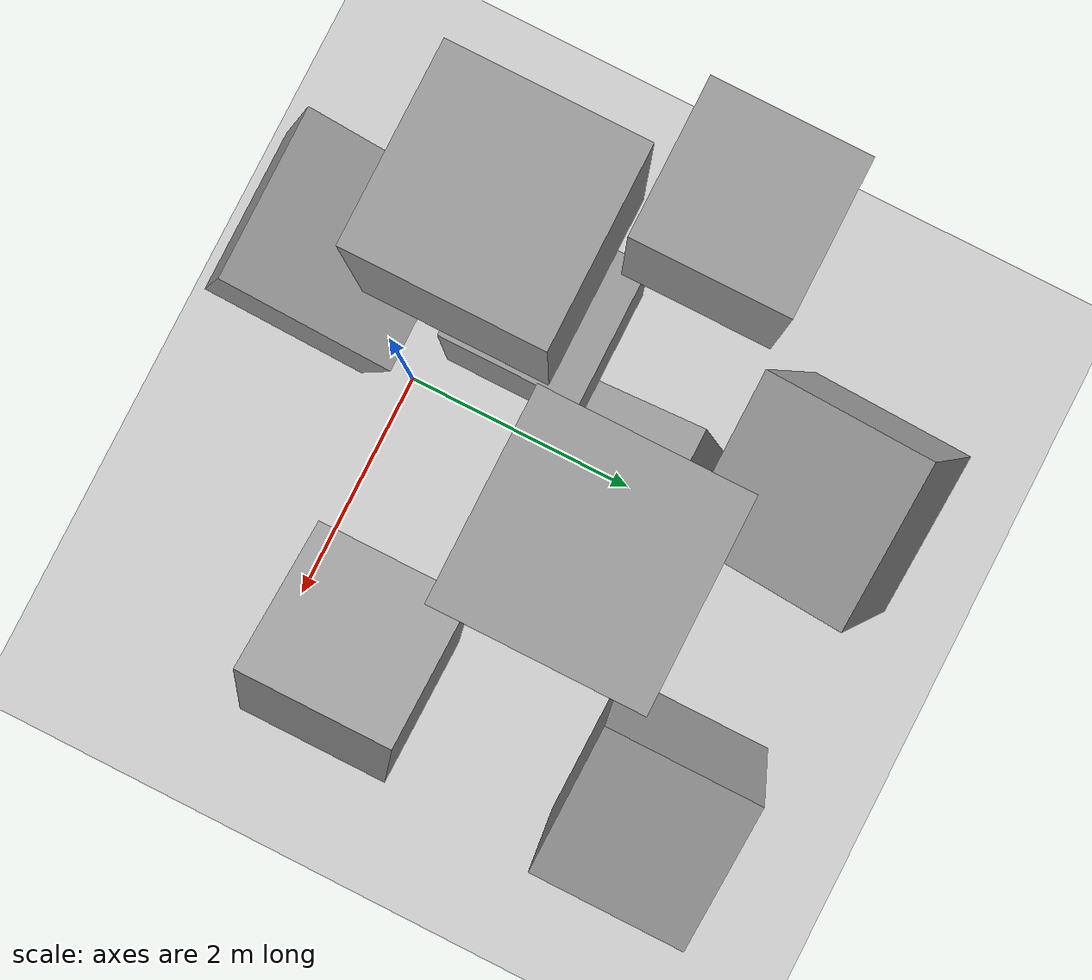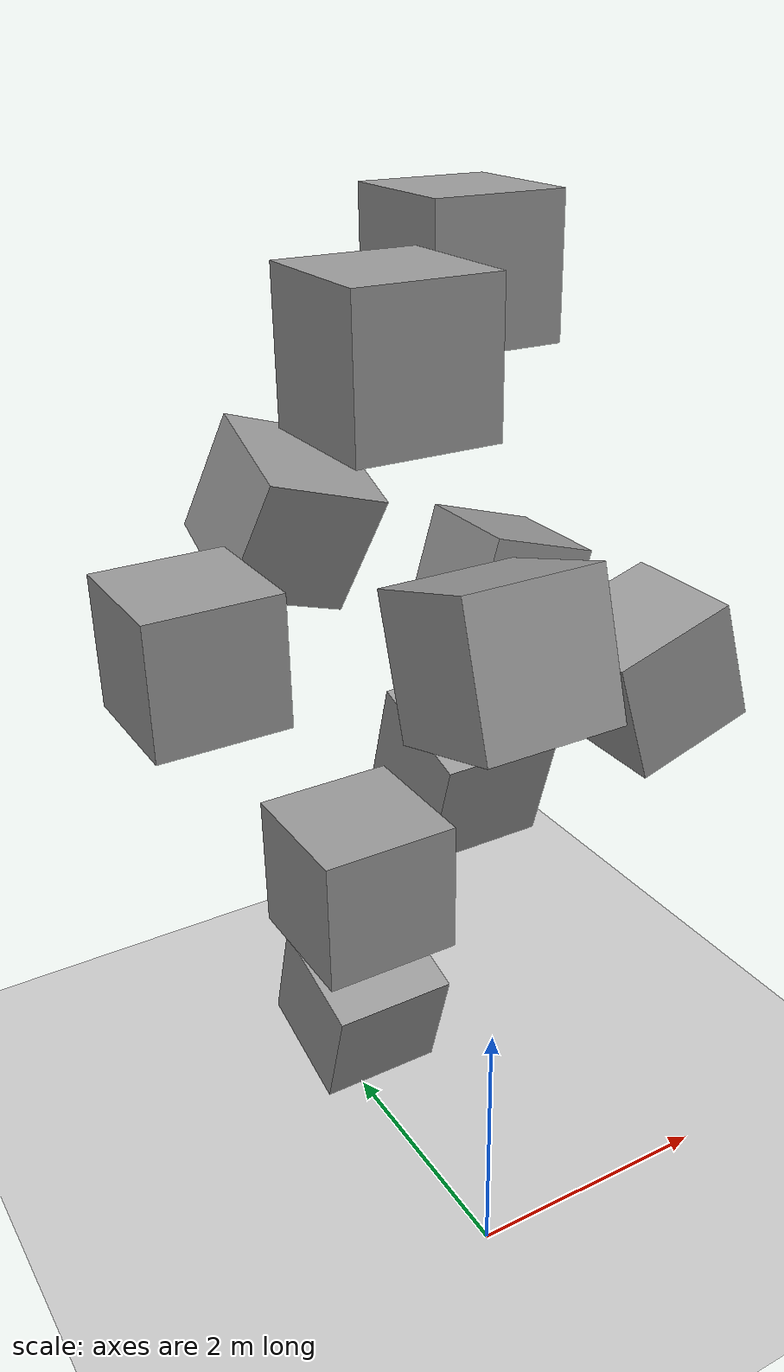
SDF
<sdf version="1.5">
 <world name="default">
  <light name="sun" type="directional">
   <pose>0 0 10 0 -0 0</pose>
   <diffuse>0.8 0.8 0.8 1</diffuse>
   <specular>0.2 0.2 0.2 1</specular>
   <attenuation>
    <range>1000</range>
    <constant>0.9</constant>
    <linear>0.01</linear>
    <quadratic>0.001</quadratic>
   </attenuation>
   <direction>-0.5 0.1 -0.9</direction>
  </light>
  <model name="ground_plane">
   <static>1</static>
   <link name="link">
    <collision name="collision">
     <geometry><plane><normal>0 0 1</normal><size>100 100</size></plane></geometry>
     <surface><friction><ode><mu>100</mu><mu2>50</mu2></ode></friction></surface>
    </collision>
    <visual name="visual">
     <cast_shadows>0</cast_shadows>
     <geometry><plane><normal>0 0 1</normal><size>100 100</size></plane></geometry>
     <material>
      <script><uri>file://media/materials/scripts/gazebo.material</uri><name>Gazebo/Grey</name></script>
     </material>
    </visual>
   </link>
  </model>
  <physics name="default_physics" default="0" type="ode">
   <max_step_size>0.001</max_step_size>
   <real_time_factor>1</real_time_factor>
   <real_time_update_rate>1000</real_time_update_rate>
   <gravity>0 0 -9.8</gravity>
   <magnetic_field>6e-06 2.3e-05 -4.2e-05</magnetic_field>
   <roki>
    <contact_info>
     <compensation>500</compensation>
     <relaxation>1</relaxation>
     <static_friction>1.0</static_friction>
     <friction>1.0</friction>
    </contact_info>
    <solver_type>Volume</solver_type>
    <debug_print>true</debug_print>
   </roki>
  </physics>
  <scene><ambient>0.4 0.4 0.4 1</ambient><background>0.7 0.7 0.7 1</background><shadows>1</shadows></scene>
  <audio><device>default</device></audio>
  <spherical_coordinates>
   <surface_model>EARTH_WGS84</surface_model>
   <latitude_deg>0</latitude_deg>
   <longitude_deg>0</longitude_deg>
   <elevation>0</elevation>
   <heading_deg>0</heading_deg>
  </spherical_coordinates>
  <model name="unit_box_1">
   <pose>1 2 3 0.3 -0 0</pose>
   <link name="link">
    <inertial>
     <mass>1</mass>
     <inertia>
      <ixx>0.166667</ixx>
      <ixy>0</ixy>
      <ixz>0</ixz>
      <iyy>0.166667</iyy>
      <iyz>0</iyz>
      <izz>0.166667</izz>
     </inertia>
    </inertial>
    <collision name="collision"><geometry><box><size>1 1 1</size></box></geometry></collision>
    <visual name="visual">
     <geometry><box><size>1 1 1</size></box></geometry>
     <material>
      <script><name>Gazebo/Grey</name><uri>file://media/materials/scripts/gazebo.material</uri></script>
     </material>
    </visual>
   </link>
  </model>
  <model name="unit_box_2">
   <pose>2 3 4 0 0.3 0</pose>
   <link name="link">
    <inertial>
     <mass>1</mass>
     <inertia>
      <ixx>0.166667</ixx>
      <ixy>0</ixy>
      <ixz>0</ixz>
      <iyy>0.166667</iyy>
      <iyz>0</iyz>
      <izz>0.166667</izz>
     </inertia>
    </inertial>
    <collision name="collision"><geometry><box><size>1 1 1</size></box></geometry></collision>
    <visual name="visual">
     <geometry><box><size>1 1 1</size></box></geometry>
     <material>
      <script><name>Gazebo/Grey</name><uri>file://media/materials/scripts/gazebo.material</uri></script>
     </material>
    </visual>
   </link>
  </model>
  <model name="unit_box_3">
   <pose>2 1 4 0 -0.3 0</pose>
   <link name="link">
    <inertial>
     <mass>1</mass>
     <inertia>
      <ixx>0.166667</ixx>
      <ixy>0</ixy>
      <ixz>0</ixz>
      <iyy>0.166667</iyy>
      <iyz>0</iyz>
      <izz>0.166667</izz>
     </inertia>
    </inertial>
    <collision name="collision"><geometry><box><size>1 1 1</size></box></geometry></collision>
    <visual name="visual">
     <geometry><box><size>1 1 1</size></box></geometry>
     <material>
      <script><name>Gazebo/Grey</name><uri>file://media/materials/scripts/gazebo.material</uri></script>
     </material>
    </visual>
   </link>
  </model>
  <model name="unit_box_4">
   <pose>0 0 5 -0.3 0 0</pose>
   <link name="link">
    <inertial>
     <mass>1</mass>
     <inertia>
      <ixx>0.166667</ixx>
      <ixy>0</ixy>
      <ixz>0</ixz>
      <iyy>0.166667</iyy>
      <iyz>0</iyz>
      <izz>0.166667</izz>
     </inertia>
    </inertial>
    <collision name="collision"><geometry><box><size>1 1 1</size></box></geometry></collision>
    <visual name="visual">
     <geometry><box><size>1 1 1</size></box></geometry>
     <material>
      <script><name>Gazebo/Grey</name><uri>file://media/materials/scripts/gazebo.material</uri></script>
     </material>
    </visual>
   </link>
  </model>
  <model name="unit_box_5">
   <pose>0 3 5 0.3 0.3 0</pose>
   <link name="link">
    <inertial>
     <mass>1</mass>
     <inertia>
      <ixx>0.166667</ixx>
      <ixy>0</ixy>
      <ixz>0</ixz>
      <iyy>0.166667</iyy>
      <iyz>0</iyz>
      <izz>0.166667</izz>
     </inertia>
    </inertial>
    <collision name="collision"><geometry><box><size>1 1 1</size></box></geometry></collision>
    <visual name="visual">
     <geometry><box><size>1 1 1</size></box></geometry>
     <material>
      <script><name>Gazebo/Grey</name><uri>file://media/materials/scripts/gazebo.material</uri></script>
     </material>
    </visual>
   </link>
  </model>
  <model name="unit_box_6">
   <pose>-0.5 1 3 0 -0 0</pose>
   <link name="link">
    <inertial>
     <mass>1</mass>
     <inertia>
      <ixx>0.166667</ixx>
      <ixy>0</ixy>
      <ixz>0</ixz>
      <iyy>0.166667</iyy>
      <iyz>0</iyz>
      <izz>0.166667</izz>
     </inertia>
    </inertial>
    <collision name="collision"><geometry><box><size>1 1 1</size></box></geometry></collision>
    <visual name="visual">
     <geometry><box><size>1 1 1</size></box></geometry>
     <material>
      <script><name>Gazebo/Grey</name><uri>file://media/materials/scripts/gazebo.material</uri></script>
     </material>
    </visual>
   </link>
  </model>
  <model name="unit_box_7">
   <pose>0.955848 2 6.91387 0 -0 0</pose>
   <link name="link">
    <inertial>
     <mass>1</mass>
     <inertia>
      <ixx>0.166667</ixx>
      <ixy>0</ixy>
      <ixz>0</ixz>
      <iyy>0.166667</iyy>
      <iyz>0</iyz>
      <izz>0.166667</izz>
     </inertia>
    </inertial>
    <collision name="collision"><geometry><box><size>1 1 1</size></box></geometry></collision>
    <visual name="visual">
     <geometry><box><size>1 1 1</size></box></geometry>
     <material>
      <script><name>Gazebo/Grey</name><uri>file://media/materials/scripts/gazebo.material</uri></script>
     </material>
    </visual>
   </link>
  </model>
  <model name="unit_box_8">
   <pose>-1.25813 1.89722 4.58169 0 -0 0</pose>
   <link name="link">
    <inertial>
     <mass>1</mass>
     <inertia>
      <ixx>0.166667</ixx>
      <ixy>0</ixy>
      <ixz>0</ixz>
      <iyy>0.166667</iyy>
      <iyz>0</iyz>
      <izz>0.166667</izz>
     </inertia>
    </inertial>
    <collision name="collision"><geometry><box><size>1 1 1</size></box></geometry></collision>
    <visual name="visual">
     <geometry><box><size>1 1 1</size></box></geometry>
     <material>
      <script><name>Gazebo/Grey</name><uri>file://media/materials/scripts/gazebo.material</uri></script>
     </material>
    </visual>
   </link>
  </model>
  <model name="unit_box_9">
   <pose>-0.210142 0.957861 6.65831 0 -0 0</pose>
   <link name="link">
    <inertial>
     <mass>1</mass>
     <inertia>
      <ixx>0.166667</ixx>
      <ixy>0</ixy>
      <ixz>0</ixz>
      <iyy>0.166667</iyy>
      <iyz>0</iyz>
      <izz>0.166667</izz>
     </inertia>
    </inertial>
    <collision name="collision"><geometry><box><size>1 1 1</size></box></geometry></collision>
    <visual name="visual">
     <geometry><box><size>1 1 1</size></box></geometry>
     <material>
      <script><name>Gazebo/Grey</name><uri>file://media/materials/scripts/gazebo.material</uri></script>
     </material>
    </visual>
   </link>
  </model>
  <model name="unit_box_10">
   <pose>0 2 1 0.3 -0 0</pose>
   <link name="link">
    <inertial>
     <mass>1</mass>
     <inertia>
      <ixx>0.166667</ixx>
      <ixy>0</ixy>
      <ixz>0</ixz>
      <iyy>0.166667</iyy>
      <iyz>0</iyz>
      <izz>0.166667</izz>
     </inertia>
    </inertial>
    <collision name="collision"><geometry><box><size>1 1 1</size></box></geometry></collision>
    <visual name="visual">
     <geometry><box><size>1 1 1</size></box></geometry>
     <material>
      <script><name>Gazebo/Grey</name><uri>file://media/materials/scripts/gazebo.material</uri></script>
     </material>
    </visual>
   </link>
  </model>
 </world>
</sdf>
